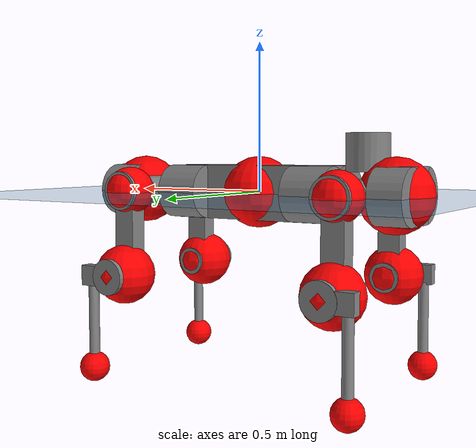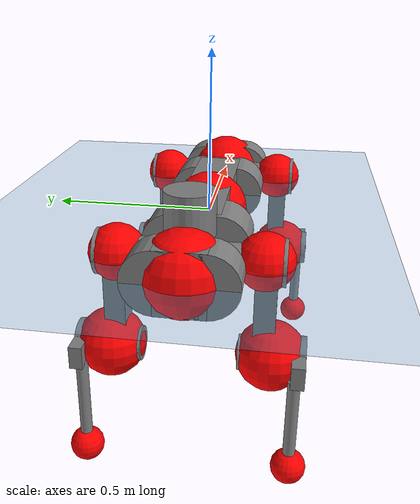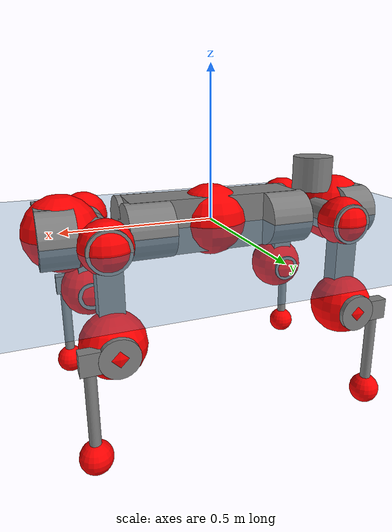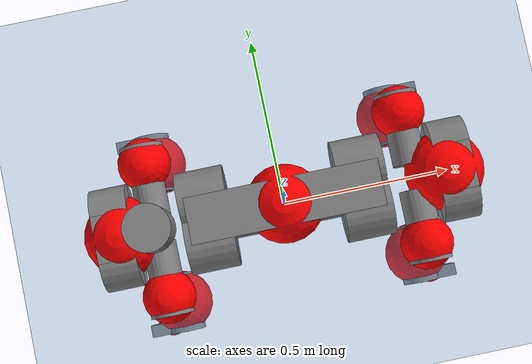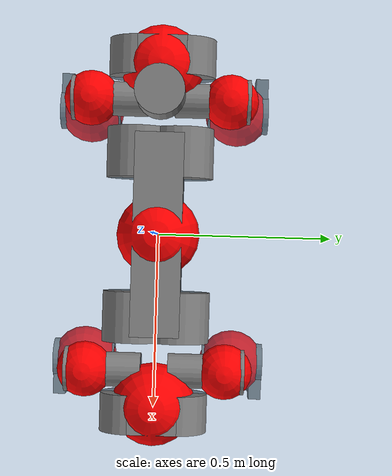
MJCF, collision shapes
<mujoco model="anymal_c">
  <compiler angle="radian" assetdir="assets" balanceinertia="true" inertiafromgeom="false"/>

  <option timestep="0.005" density="1.2" viscosity="2e-05"/>

  <size nkey="1"/>

  <visual>
    <quality shadowsize="8192"/>
    <map shadowclip="0.5"/>
  </visual>

  <default>
    <default class="/">
      <material specular="0" shininess="0.25"/>
      <geom contype="0" conaffinity="0" group="1" solref="-1000 -80"/>
      <site size="0.01 0.005 0.005" group="5"/>
      <general forcelimited="true" forcerange="-80 80" biastype="affine" gainprm="80" biasprm="0 -80 -2"/>
      <default class="anymal_c">
        <joint armature="0.01" damping="0.01" frictionloss="0.1"/>
        <default class="visual">
          <geom type="mesh" group="2"/>
          <default class="visual_zflip"/>
        </default>
        <default class="collision">
          <geom type="cylinder" group="3"/>
          <default class="foot">
            <geom size="0.03 0 0" type="sphere" condim="6" priority="1" friction="0.8 0.02 0.01" solimp="0.015 1 0.03"/>
          </default>
        </default>
      </default>
      <default class="reward_collision_sphere">
        <geom group="5" rgba="1 0 0 1"/>
      </default>
    </default>
  </default>

  <asset>
    <texture type="skybox" colorspace="auto" name="//unnamed_texture_0" builtin="gradient" rgb1="0.95 0.95 0.95" rgb2="0.95 0.95 0.95" width="100" height="600"/>
    <texture type="2d" colorspace="auto" name="texplane" builtin="checker" rgb1="0.345 0.575 0.748" rgb2="0.345 0.575 0.748" markrgb="1 1 1" width="512" height="512"/>
    <texture type="2d" colorspace="linear" name="base" file="base.png"/>
    <texture type="2d" colorspace="linear" name="top_shell" file="top_shell.png"/>
    <texture type="2d" colorspace="linear" name="bottom_shell" file="bottom_shell.png"/>
    <texture type="2d" colorspace="linear" name="remote" file="remote.png"/>
    <texture type="2d" colorspace="linear" name="hatch" file="hatch.png"/>
    <texture type="2d" colorspace="linear" name="handle" file="handle.png"/>
    <texture type="2d" colorspace="linear" name="face" file="face.png"/>
    <texture type="2d" colorspace="linear" name="battery" file="battery.png"/>
    <texture type="2d" colorspace="linear" name="lidar_cage" file="lidar_cage.png"/>
    <texture type="2d" colorspace="linear" name="depth_camera" file="depth_camera.png"/>
    <texture type="2d" colorspace="linear" name="wide_angle_camera" file="wide_angle_camera.png"/>
    <texture type="2d" colorspace="linear" name="lidar" file="lidar.png"/>
    <texture type="2d" colorspace="linear" name="drive" file="drive.png"/>
    <texture type="2d" colorspace="linear" name="hip_l" file="hip_l.png"/>
    <texture type="2d" colorspace="linear" name="shank_l" file="shank_l.png"/>
    <texture type="2d" colorspace="linear" name="foot" file="foot.png"/>
    <texture type="2d" colorspace="linear" name="thigh" file="thigh.png"/>
    <texture type="2d" colorspace="linear" name="shank_r" file="shank_r.png"/>
    <texture type="2d" colorspace="linear" name="hip_r" file="hip_r.png"/>
    <material name="MatPlane" class="/" texture="texplane" texuniform="true" texrepeat="2 2" specular="0.9" shininess="0.5"/>
    <material name="black_plastic" class="/" rgba="0.007 0.007 0.007 1"/>
    <material name="green" class="/" rgba="0.052 0.178 0.033 1"/>
    <material name="red" class="/" rgba="0.178 0.006 0.005 1"/>
    <material name="yellow" class="/" rgba="0.178 0.119 0.006 1"/>
    <material name="lwl" class="/" rgba="0.8 0.8 0.8 1"/>
    <material name="base" class="/" texture="base"/>
    <material name="top_shell" class="/" texture="top_shell"/>
    <material name="bottom_shell" class="/" texture="bottom_shell"/>
    <material name="hip_l" class="/" texture="hip_l"/>
    <material name="thigh" class="/" texture="thigh"/>
    <material name="shank_l" class="/" texture="shank_l"/>
    <material name="foot" class="/" texture="foot"/>
    <material name="hip_r" class="/" texture="hip_r"/>
    <material name="shank" class="/" texture="shank_r"/>
    <material name="hatch" class="/" texture="hatch"/>
    <material name="remote" class="/" texture="remote"/>
    <material name="handle" class="/" texture="handle"/>
    <material name="face" class="/" texture="face"/>
    <material name="depth_camera" class="/" texture="depth_camera"/>
    <material name="wide_angle_camera" class="/" texture="wide_angle_camera"/>
    <material name="battery" class="/" texture="battery"/>
    <material name="lidar_cage" class="/" texture="lidar_cage"/>
    <material name="lidar" class="/" texture="lidar"/>
    <material name="drive" class="/" texture="drive"/>
    <mesh name="base_0" class="/" file="base_0.obj"/>
    <mesh name="base_1" class="/" file="base_1.obj"/>
    <mesh name="base_2" class="/" file="base_2.obj"/>
    <mesh name="base_3" class="/" file="base_3.obj"/>
    <mesh name="base_4" class="/" file="base_4.obj"/>
    <mesh name="base_5" class="/" file="base_5.obj"/>
    <mesh name="top_shell" class="/" file="top_shell.obj"/>
    <mesh name="bottom_shell" class="/" file="bottom_shell.obj"/>
    <mesh name="remote" class="/" file="remote.obj"/>
    <mesh name="handle" class="/" file="handle.obj"/>
    <mesh name="face" class="/" file="face.obj"/>
    <mesh name="wide_angle_camera" class="/" file="wide_angle_camera.obj"/>
    <mesh name="depth_camera" class="/" file="depth_camera.obj"/>
    <mesh name="battery" class="/" file="battery.obj"/>
    <mesh name="lidar_cage" class="/" file="lidar_cage.obj"/>
    <mesh name="lidar" class="/" file="lidar.obj"/>
    <mesh name="drive" class="/" file="drive.obj"/>
    <mesh name="hip_l" class="/" file="hip_l.obj"/>
    <mesh name="thigh" class="/" file="thigh.obj"/>
    <mesh name="shank_l" class="/" file="shank_l.obj"/>
    <mesh name="foot" class="/" file="foot.obj"/>
    <mesh name="hip_r" class="/" file="hip_r.obj"/>
    <mesh name="hatch" class="/" file="hatch.obj"/>
    <mesh name="shank_r" class="/" file="shank_r.obj"/>
  </asset>

  <worldbody>
    <geom name="floor" class="/" size="100 100 0.125" type="plane" group="0" material="MatPlane"/>
    <light name="toplight_shadow" class="/" pos="0 0 5" dir="0.0990148 0.0990148 -0.990148" type="directional" ambient="0.04 0.04 0.04" diffuse="0.55 0.55 0.55" specular="0.12 0.12 0.12"/>
    <light name="toplight_fill" class="/" pos="0 0 5" dir="0.0990148 0.0990148 -0.990148" type="directional" castshadow="false" ambient="0.04 0.04 0.04" diffuse="0.3 0.3 0.3" specular="0.08 0.08 0.08"/>
    <body name="trunk" childclass="anymal_c" pos="0.00195206 -0.000208767 0.000923907" quat="1 -0.000658614 0.000159296 0.000327668">
      <inertial pos="0.000729913 -0.000916494 0.0495111" quat="0.500099 0.499617 0.499302 0.50098" mass="18.801" diaginertia="0.984064 0.417595 0.211497"/>
      <joint name="//unnamed_joint_0" type="free" armature="0" damping="0" frictionloss="0"/>
      <geom name="//unnamed_geom_1" class="visual" material="green" mesh="base_0"/>
      <geom name="//unnamed_geom_2" class="visual" material="yellow" mesh="base_1"/>
      <geom name="//unnamed_geom_3" class="visual" material="red" mesh="base_2"/>
      <geom name="//unnamed_geom_4" class="visual" material="black_plastic" mesh="base_3"/>
      <geom name="//unnamed_geom_5" class="visual" material="lwl" mesh="base_4"/>
      <geom name="//unnamed_geom_6" class="visual" material="base" mesh="base_5"/>
      <geom name="trunk_1" class="collision" size="0.291059 0.0702555 0.0903285" type="box"/>
      <geom name="trunk_2" class="collision" size="0.0903285 0.0727647" pos="0.237136 0.0646438 0" quat="0.707107 0 0.707107 0"/>
      <geom name="trunk_3" class="collision" size="0.0903285 0.0727647" pos="-0.237136 0.0646438 0" quat="0.707107 0 0.707107 0"/>
      <geom name="trunk_4" class="collision" size="0.0903285 0.0727647" pos="0.237136 -0.0646438 0" quat="0.707107 0 0.707107 0"/>
      <geom name="trunk_5" class="collision" size="0.0903285 0.0727647" pos="-0.237136 -0.0646438 0" quat="0.707107 0 0.707107 0"/>
      <geom name="//unnamed_geom_12" class="visual" material="top_shell" mesh="top_shell"/>
      <geom name="//unnamed_geom_13" class="visual" material="bottom_shell" mesh="bottom_shell"/>
      <geom name="//unnamed_geom_14" class="visual" material="remote" mesh="remote"/>
      <geom name="//unnamed_geom_15" class="visual" material="handle" mesh="handle"/>
      <geom name="//unnamed_geom_16" class="visual" pos="0.451921 0 0" quat="1 0 0 0" material="face" mesh="face"/>
      <geom name="trunk_6" class="collision" size="0.0552008 0.0702555 0.0903285" pos="0.511887 0 0" type="box"/>
      <geom name="//unnamed_geom_18" class="collision" size="0.0903285 0.0552008" pos="0.511887 0.0646438 0" quat="0.707107 0 0.707107 0"/>
      <geom name="//unnamed_geom_19" class="collision" size="0.0903285 0.0552008" pos="0.511887 -0.0646438 0" quat="0.707107 0 0.707107 0"/>
      <geom name="//unnamed_geom_20" class="visual" pos="0.503324 0 -0.0284104" quat="0.965926 0 0.258819 0" material="depth_camera" mesh="depth_camera"/>
      <geom name="//unnamed_geom_21" class="visual" pos="0.559314 0 0.0149279" material="wide_angle_camera" mesh="wide_angle_camera"/>
      <geom name="//unnamed_geom_22" class="visual_zflip" pos="-0.451921 0 0" quat="0 0 0 1" material="face" mesh="face"/>
      <geom name="trunk_7" class="collision" size="0.0552008 0.0702555 0.0903285" pos="-0.511887 0 0" quat="0 0 0 1" type="box"/>
      <geom name="//unnamed_geom_24" class="collision" size="0.0903285 0.0552008" pos="-0.511887 -0.0646438 0" quat="0 -0.707107 0 0.707107"/>
      <geom name="//unnamed_geom_25" class="collision" size="0.0903285 0.0552008" pos="-0.511887 0.0646438 0" quat="0 -0.707107 0 0.707107"/>
      <geom name="//unnamed_geom_26" class="visual" pos="-0.503324 0 -0.0284104" quat="0 -0.258819 0 0.965926" material="depth_camera" mesh="depth_camera"/>
      <geom name="//unnamed_geom_27" class="visual_zflip" pos="-0.559314 0 0.0149279" quat="0 0 0 1" material="wide_angle_camera" mesh="wide_angle_camera"/>
      <geom name="//unnamed_geom_28" class="visual" material="battery" mesh="battery"/>
      <geom name="//unnamed_geom_29" class="visual" pos="0 0.0684169 0.0296758" quat="0.683013 -0.183013 0.183013 0.683013" material="depth_camera" mesh="depth_camera"/>
      <geom name="//unnamed_geom_30" class="visual" pos="0 -0.0684169 0.0296758" quat="0.683013 0.183013 0.183013 -0.683013" material="depth_camera" mesh="depth_camera"/>
      <geom name="//unnamed_geom_31" class="visual" pos="-0.396862 0 0.0732933" quat="1 0 0 0" material="lidar_cage" mesh="lidar_cage"/>
      <geom name="trunk_8" class="collision" size="0.0702555 0.060219" pos="-0.396862 0 0.133125"/>
      <geom name="//unnamed_geom_33" class="visual" pos="-0.396862 -6.55302e-05 0.1418" quat="0.707107 0 0 -0.707107" material="lidar" mesh="lidar"/>
      <geom name="//unnamed_geom_34" class="visual" pos="0.326975 0.0960685 -1.2714e-09" quat="0.258819 0.965926 0 0" material="drive" mesh="drive"/>
      <geom name="//unnamed_geom_35" class="visual" pos="0.326975 -0.0960685 1.2714e-09" quat="0.258819 -0.965926 0 0" material="drive" mesh="drive"/>
      <geom name="//unnamed_geom_36" class="visual" pos="-0.326975 0.0960685 1.2714e-09" quat="0 0 0.965926 -0.258819" material="drive" mesh="drive"/>
      <geom name="//unnamed_geom_37" class="visual" pos="-0.326975 -0.0960685 -1.2714e-09" quat="0 0 -0.965926 -0.258819" material="drive" mesh="drive"/>
      <geom name="//unnamed_geom_38" class="visual" pos="0.126473 0 0.0727947" quat="1 0 0 0" material="hatch" mesh="hatch"/>
      <geom name="//unnamed_geom_39" class="reward_collision_sphere" size="0.120438"/>
      <geom name="//unnamed_geom_40" class="reward_collision_sphere" size="0.120438" pos="0.490626 0 0"/>
      <geom name="//unnamed_geom_41" class="reward_collision_sphere" size="0.120438" pos="-0.490626 0 0"/>
      <site name="imu" pos="0.269531 0.00418523 0.0528509" size="0.0100365"/>
      <camera name="track" pos="0 -1.84697 0" quat="0.707107 0.707107 0 0" mode="trackcom"/>
      <camera name="ego_camera" pos="0.490626 0 -0.0398875" quat="-0.5 -0.5 0.5 0.5"/>
      <body name="LF_HIP" pos="0.327308 0.0962596 -4.86316e-05" quat="0.2587 0.965958 -0.000327001 -0.000358099">
        <inertial pos="0.0616081 -0.0139904 -0.00868588" quat="-0.127242 0.710358 -0.133076 0.679332" mass="2.84139" diaginertia="0.00923882 0.00326772 0.00323865"/>
        <joint name="LF_HAA" pos="0 0 0" axis="0.999927 -0.0120824 -0.000905095" range="-0.682823 0.479157" armature="0.0099214" damping="0.00577277" frictionloss="0.100092"/>
        <geom name="//unnamed_geom_42" class="visual" pos="0 -7.47908e-05 1.22843e-05" quat="0.258819 -0.965926 0 0" material="hip_l" mesh="hip_l"/>
        <geom name="//unnamed_geom_43" class="visual" pos="0.0653078 -0.0769644 -0.0449806" quat="0.183013 -0.683013 0.683013 0.183013" material="drive" mesh="drive"/>
        <geom name="//unnamed_geom_44" class="collision" size="0.0501825 0.0702555" pos="0.0653078 -0.0110447 -0.00688558" quat="-0.353553 -0.612372 0.612372 -0.353553"/>
        <body name="LF_THIGH" pos="0.0647754 -0.0669949 -0.0429088" quat="0.182906 -0.682832 0.683114 0.183416">
          <inertial pos="0.0340204 0.000401153 -0.24641" quat="0.993204 -0.00514592 -0.0803579 0.0840384" mass="3.09009" diaginertia="0.0459479 0.0200778 0.00421879"/>
          <joint name="LF_HFE" pos="0 0 0" axis="0.999994 -0.00273028 0.00203645" range="-3.16193 3.14046" armature="0.0104339" damping="0.00799408" frictionloss="0.104869"/>
          <geom name="//unnamed_geom_45" class="visual" pos="0.00331861 5.22936e-06 0" quat="0.707107 0 0 -0.707107" material="thigh" mesh="thigh"/>
          <geom name="//unnamed_geom_46" class="collision" size="0.0652373 0.040146" pos="0.0436112 0 0" quat="0.5 0.5 -0.5 -0.5"/>
          <geom name="//unnamed_geom_47" class="collision" size="0.0376369 0.0301095 0.14183" pos="0.0327084 0 -0.140917" quat="0.707107 0 0 -0.707107" type="box"/>
          <geom name="//unnamed_geom_48" class="visual" pos="0.109355 0 -0.284198" quat="1 0 0 0" material="drive" mesh="drive"/>
          <geom name="//unnamed_geom_49" class="collision" size="0.0501825 0.0702555" pos="0.0330355 0 -0.284198" quat="0.707107 0 0.707107 0"/>
          <geom name="//unnamed_geom_50" class="reward_collision_sphere" size="0.080292" pos="0.027257 0 0"/>
          <body name="LF_SHANK" pos="0.109563 -0.00179522 -0.284075" quat="1 8.40483e-05 -4.38056e-05 5.19831e-05">
            <inertial pos="0.00518111 -0.0567366 -0.0805593" quat="0.992718 -0.118531 3.34961e-05 -0.0214669" mass="0.594878" diaginertia="0.0161603 0.00634112 0.001122"/>
            <joint name="LF_KFE" pos="0 0 0" axis="0.999984 -0.00487423 0.00272285" range="-3.16909 3.13911" armature="0.00967457" damping="0.0032727" frictionloss="0.0964246"/>
            <geom name="//unnamed_geom_51" class="visual" pos="0.00108213 0.00576996 0" quat="0.707107 0 0 -0.707107" material="shank_l" mesh="shank_l"/>
            <geom name="LF_kfe_act" class="collision" size="0.060219 0.020073" pos="0.0218056 0 0" quat="0.5 0.5 -0.5 -0.5"/>
            <geom name="//unnamed_geom_53" class="collision" size="0.0577089 0.0338732 0.0190694" pos="0.0218056 -0.0530994 0" quat="0.5 0.5 -0.5 -0.5" type="box"/>
            <geom name="//unnamed_geom_54" class="visual" pos="0.0142279 -0.0793609 -0.337019" quat="0.382683 0 0 -0.92388" material="foot" mesh="foot"/>
            <geom name="LF_calf" class="collision" size="0.0175639 0.141768" pos="0.0142282 -0.0812204 -0.16851" quat="0.707107 0 0 -0.707107"/>
            <geom name="LF_foot" class="foot" size="0.0328802" pos="0.0142282 -0.0812204 -0.314583" quat="0.707107 0 0 -0.707107"/>
            <geom name="//unnamed_geom_57" class="reward_collision_sphere" size="0.100365" pos="-0.054514 0 0"/>
            <geom name="//unnamed_geom_58" class="reward_collision_sphere" size="0.0501825" pos="0.0142282 -0.0812204 -0.314583"/>
            <site name="LF_foot" class="foot" pos="0.0142282 -0.0812204 -0.314583" quat="0.707107 0 0 -0.707107" size="0.0100365"/>
          </body>
        </body>
      </body>
      <body name="RF_HIP" pos="0.327808 -0.0965142 -0.00125352" quat="0.258504 -0.96601 4.2574e-05 0.000159691">
        <inertial pos="0.0611251 0.0134712 -0.00838702" quat="0.137265 0.676125 0.127968 0.712487" mass="2.79878" diaginertia="0.00905793 0.00333048 0.00327993"/>
        <joint name="RF_HAA" pos="0 0 0" axis="0.999985 0.000563585 0.00542909" range="-0.50964 0.722624" armature="0.00973273" damping="0.0119635" frictionloss="0.0955654"/>
        <geom name="//unnamed_geom_59" class="visual" pos="0 7.47902e-05 1.22843e-05" quat="0.258819 0.965926 0 0" material="hip_r" mesh="hip_r"/>
        <geom name="//unnamed_geom_60" class="visual" pos="0.0653078 0.0769644 -0.0449806" quat="0.183013 0.683013 0.683013 -0.183013" material="drive" mesh="drive"/>
        <geom name="//unnamed_geom_61" class="collision" size="0.0501825 0.0702555" pos="0.0653078 0.0110447 -0.00688558" quat="-0.353553 0.612372 0.612372 0.353553"/>
        <body name="RF_THIGH" pos="0.0656832 0.064907 -0.0429389" quat="0.183028 0.683049 0.682979 -0.182989">
          <inertial pos="0.0330279 -0.000507326 -0.245228" quat="0.992847 -0.00437091 -0.0798894 0.0886167" mass="3.12404" diaginertia="0.0468758 0.0205058 0.004216"/>
          <joint name="RF_HFE" pos="0 0 0" axis="1 9.63111e-06 3.08098e-05" range="-3.15215 3.15369" armature="0.00996862" damping="0.0103077" frictionloss="0.0954915"/>
          <geom name="//unnamed_geom_62" class="visual" pos="0.00331861 5.22936e-06 0" quat="0.707107 0 0 -0.707107" material="thigh" mesh="thigh"/>
          <geom name="//unnamed_geom_63" class="collision" size="0.0652373 0.040146" pos="0.0436112 0 0" quat="0.5 0.5 0.5 0.5"/>
          <geom name="//unnamed_geom_64" class="collision" size="0.0376369 0.0301095 0.14183" pos="0.0327084 0 -0.140917" quat="0.707107 0 0 0.707107" type="box"/>
          <geom name="//unnamed_geom_65" class="visual" pos="0.109355 0 -0.284198" quat="1 0 0 0" material="drive" mesh="drive"/>
          <geom name="//unnamed_geom_66" class="collision" size="0.0501825 0.0702555" pos="0.0330355 0 -0.284198" quat="0.707107 0 0.707107 0"/>
          <geom name="//unnamed_geom_67" class="reward_collision_sphere" size="0.080292" pos="0.027257 0 0"/>
          <body name="RF_SHANK" pos="0.109134 -0.000402468 -0.283184" quat="1 2.05875e-05 3.9786e-05 3.16707e-05">
            <inertial pos="0.00593973 0.0567006 -0.0804478" quat="0.993113 0.115246 -0.00494673 0.0204889" mass="0.596739" diaginertia="0.015687 0.00621668 0.00110245"/>
            <joint name="RF_KFE" pos="0 0 0" axis="0.999991 0.00352987 -0.00255633" range="-3.12441 3.13749" armature="0.0104588" damping="0.0103381" frictionloss="0.105308"/>
            <geom name="//unnamed_geom_68" class="visual" pos="0.00108212 -0.00576995 0" quat="0.707107 0 0 0.707107" material="shank" mesh="shank_r"/>
            <geom name="RF_kfe_act" class="collision" size="0.060219 0.020073" pos="0.0218056 0 0" quat="0.5 0.5 0.5 0.5"/>
            <geom name="//unnamed_geom_70" class="collision" size="0.0577089 0.0338732 0.0190694" pos="0.0218056 0.0530994 0" quat="0.5 0.5 0.5 0.5" type="box"/>
            <geom name="//unnamed_geom_71" class="visual" pos="0.0142284 0.0793609 -0.337019" quat="0.382683 0 0 0.92388" material="foot" mesh="foot"/>
            <geom name="RF_calf" class="collision" size="0.0175639 0.141768" pos="0.0142282 0.0812204 -0.16851" quat="0.707107 0 0 0.707107"/>
            <geom name="RF_foot" class="foot" size="0.0293635" pos="0.0142282 0.0812204 -0.314583" quat="0.707107 0 0 0.707107"/>
            <geom name="//unnamed_geom_74" class="reward_collision_sphere" size="0.100365" pos="-0.054514 0 0"/>
            <geom name="//unnamed_geom_75" class="reward_collision_sphere" size="0.0501825" pos="0.0142282 0.0812204 -0.314583"/>
            <site name="RF_foot" class="foot" pos="0.0142282 0.0812204 -0.314583" quat="0.707107 0 0 0.707107" size="0.0100365"/>
          </body>
        </body>
      </body>
      <body name="LH_HIP" pos="-0.326641 0.0965776 0.000631207" quat="0.000200434 0.000280918 0.965922 -0.258833">
        <inertial pos="0.0609475 0.0155275 -0.00863128" quat="0.130056 0.682909 0.134802 0.70608" mass="2.86663" diaginertia="0.00907048 0.00331771 0.00329986"/>
        <joint name="LH_HAA" pos="0 0 0" axis="0.999998 -0.00022905 0.00185928" range="-0.50323 0.733392" armature="0.00966745" damping="0.0134849" frictionloss="0.106715"/>
        <geom name="//unnamed_geom_76" class="visual" pos="0 7.47902e-05 1.22843e-05" quat="-0.258819 -0.965926 0 0" material="hip_r" mesh="hip_r"/>
        <geom name="//unnamed_geom_77" class="visual" pos="0.0653078 0.0769644 -0.0449806" quat="0.183013 0.683013 0.683013 -0.183013" material="drive" mesh="drive"/>
        <geom name="//unnamed_geom_78" class="collision" size="0.0501825 0.0702555" pos="0.0653078 0.0110447 -0.00688558" quat="-0.353553 0.612372 0.612372 0.353553"/>
        <body name="LH_THIGH" pos="0.0647685 0.0658076 -0.0414785" quat="0.182774 0.683205 0.682882 -0.183021">
          <inertial pos="0.0337838 8.46201e-05 -0.24451" quat="0.992334 -0.00808259 -0.0827413 0.0914444" mass="3.15016" diaginertia="0.0462148 0.0200388 0.00408958"/>
          <joint name="LH_HFE" pos="0 0 0" axis="0.999994 -0.00264689 0.00236333" range="-3.14235 3.14523" armature="0.0101921" damping="0.0119506" frictionloss="0.0999728"/>
          <geom name="//unnamed_geom_79" class="visual" pos="0.00331861 5.22936e-06 0" quat="0.707107 0 0 -0.707107" material="thigh" mesh="thigh"/>
          <geom name="//unnamed_geom_80" class="collision" size="0.0652373 0.040146" pos="0.0436112 0 0" quat="0.5 0.5 -0.5 -0.5"/>
          <geom name="//unnamed_geom_81" class="collision" size="0.0376369 0.0301095 0.14183" pos="0.0327084 0 -0.140917" quat="0.707107 0 0 -0.707107" type="box"/>
          <geom name="//unnamed_geom_82" class="visual" pos="0.109355 0 -0.284198" quat="1 0 0 0" material="drive" mesh="drive"/>
          <geom name="//unnamed_geom_83" class="collision" size="0.0501825 0.0702555" pos="0.0330355 0 -0.284198" quat="0.707107 0 0.707107 0"/>
          <geom name="//unnamed_geom_84" class="reward_collision_sphere" size="0.080292" pos="0.027257 0 0"/>
          <body name="LH_SHANK" pos="0.109634 -0.00037965 -0.285549" quat="1 1.26557e-05 -2.48765e-05 2.29018e-05">
            <inertial pos="0.00687762 0.0582844 -0.0801785" quat="0.99276 0.116779 0.0016187 0.028063" mass="0.589036" diaginertia="0.0156286 0.00614096 0.00106633"/>
            <joint name="LH_KFE" pos="0 0 0" axis="0.999998 0.00208934 -9.21972e-05" range="-3.14088 3.12163" armature="0.00973611" damping="0.00933282" frictionloss="0.109144"/>
            <geom name="//unnamed_geom_85" class="visual" pos="0.00108212 -0.00576995 0" quat="-0.707107 0 0 -0.707107" material="shank" mesh="shank_r"/>
            <geom name="LH_kfe_act" class="collision" size="0.060219 0.020073" pos="0.0218056 0 0" quat="0.5 0.5 -0.5 -0.5"/>
            <geom name="//unnamed_geom_87" class="collision" size="0.0577089 0.0338732 0.0190694" pos="0.0218056 0.0530994 0" quat="0.5 0.5 -0.5 -0.5" type="box"/>
            <geom name="//unnamed_geom_88" class="visual" pos="0.0142284 0.0793609 -0.337019" quat="-0.382683 0 0 -0.92388" material="foot" mesh="foot"/>
            <geom name="LH_calf" class="collision" size="0.0175639 0.141768" pos="0.0142282 0.0812204 -0.16851" quat="0.707107 0 0 -0.707107"/>
            <geom name="LH_foot" class="foot" size="0.0314263" pos="0.0142282 0.0812204 -0.314583" quat="0.707107 0 0 -0.707107"/>
            <geom name="//unnamed_geom_91" class="reward_collision_sphere" size="0.100365" pos="-0.054514 0 0"/>
            <geom name="//unnamed_geom_92" class="reward_collision_sphere" size="0.0501825" pos="0.0142282 0.0812204 -0.314583"/>
            <site name="LH_foot" class="foot" pos="0.0142282 0.0812204 -0.314583" quat="0.707107 0 0 -0.707107" size="0.0100365"/>
          </body>
        </body>
      </body>
      <body name="RH_HIP" pos="-0.32765 -0.0957131 -0.000235001" quat="-0.00068041 -3.69355e-05 -0.965767 -0.259409">
        <inertial pos="0.0635586 -0.0139694 -0.0102697" quat="-0.12793 0.709743 -0.135432 0.67938" mass="2.81368" diaginertia="0.00904914 0.00331385 0.00322728"/>
        <joint name="RH_HAA" pos="0 0 0" axis="0.999942 -0.00115497 -0.0107086" range="-0.7407 0.499768" armature="0.0104914" damping="0.00840234" frictionloss="0.101402"/>
        <geom name="//unnamed_geom_93" class="visual" pos="0 -7.47908e-05 1.22843e-05" quat="-0.258819 0.965926 0 0" material="hip_l" mesh="hip_l"/>
        <geom name="//unnamed_geom_94" class="visual" pos="0.0653078 -0.0769644 -0.0449806" quat="-0.183013 0.683013 -0.683013 -0.183013" material="drive" mesh="drive"/>
        <geom name="//unnamed_geom_95" class="collision" size="0.0501825 0.0702555" pos="0.0653078 -0.0110447 -0.00688558" quat="0.353553 0.612372 -0.612372 0.353553"/>
        <body name="RH_THIGH" pos="0.0654529 -0.0666683 -0.0437264" quat="-0.182897 0.683023 -0.683055 -0.182932">
          <inertial pos="0.0332494 0.000212651 -0.244731" quat="0.993151 -0.00498839 -0.0808337 0.0842105" mass="3.06717" diaginertia="0.0464215 0.0200381 0.00413583"/>
          <joint name="RH_HFE" pos="0 0 0" axis="1 -0.000557589 2.08573e-06" range="-3.13987 3.16641" armature="0.00979105" damping="0.00721463" frictionloss="0.101256"/>
          <geom name="//unnamed_geom_96" class="visual" pos="0.00331861 5.22936e-06 0" quat="0.707107 0 0 -0.707107" material="thigh" mesh="thigh"/>
          <geom name="//unnamed_geom_97" class="collision" size="0.0652373 0.040146" pos="0.0436112 0 0" quat="0.5 0.5 0.5 0.5"/>
          <geom name="//unnamed_geom_98" class="collision" size="0.0376369 0.0301095 0.14183" pos="0.0327084 0 -0.140917" quat="0.707107 0 0 0.707107" type="box"/>
          <geom name="//unnamed_geom_99" class="visual" pos="0.109355 0 -0.284198" quat="1 0 0 0" material="drive" mesh="drive"/>
          <geom name="//unnamed_geom_100" class="collision" size="0.0501825 0.0702555" pos="0.0330355 0 -0.284198" quat="0.707107 0 0.707107 0"/>
          <geom name="//unnamed_geom_101" class="reward_collision_sphere" size="0.080292" pos="0.027257 0 0"/>
          <body name="RH_SHANK" pos="0.108729 0.000584051 -0.285181" quat="1 -0.000165115 -5.4253e-05 3.78464e-05">
            <inertial pos="0.00584843 -0.0559453 -0.0801398" quat="0.993198 -0.114218 -0.0021765 -0.0225043" mass="0.593427" diaginertia="0.0154775 0.00618235 0.00111461"/>
            <joint name="RH_KFE" pos="0 0 0" axis="0.999945 0.00225155 0.010275" range="-3.12219 3.13574" armature="0.0102954" damping="0.0139751" frictionloss="0.102783"/>
            <geom name="//unnamed_geom_102" class="visual" pos="0.00108213 0.00576996 0" quat="0.707107 0 0 -0.707107" material="shank_l" mesh="shank_l"/>
            <geom name="RH_kfe_act" class="collision" size="0.060219 0.020073" pos="0.0218056 0 0" quat="0.5 0.5 0.5 0.5"/>
            <geom name="//unnamed_geom_104" class="collision" size="0.0577089 0.0338732 0.0190694" pos="0.0218056 -0.0530994 0" quat="0.5 0.5 0.5 0.5" type="box"/>
            <geom name="//unnamed_geom_105" class="visual" pos="0.0142279 -0.0793609 -0.337019" quat="0.382683 0 0 -0.92388" material="foot" mesh="foot"/>
            <geom name="RH_calf" class="collision" size="0.0175639 0.141768" pos="0.0142282 -0.0812204 -0.16851" quat="0.707107 0 0 0.707107"/>
            <geom name="RH_foot" class="foot" size="0.0273127" pos="0.0142282 -0.0812204 -0.314583" quat="0.707107 0 0 0.707107"/>
            <geom name="//unnamed_geom_108" class="reward_collision_sphere" size="0.100365" pos="-0.054514 0 0"/>
            <geom name="//unnamed_geom_109" class="reward_collision_sphere" size="0.0501825" pos="0.0142282 -0.0812204 -0.314583"/>
            <site name="RH_foot" class="foot" pos="0.0142282 -0.0812204 -0.314583" quat="0.707107 0 0 0.707107" size="0.0100365"/>
          </body>
        </body>
      </body>
    </body>
  </worldbody>

  <contact>
    <pair class="/" geom1="floor" geom2="LF_foot" name="//unnamed_contact_0"/>
    <pair class="/" geom1="floor" geom2="RF_foot" name="//unnamed_contact_1"/>
    <pair class="/" geom1="floor" geom2="LH_foot" name="//unnamed_contact_2"/>
    <pair class="/" geom1="floor" geom2="RH_foot" name="//unnamed_contact_3"/>
  </contact>

  <actuator>
    <general name="LF_HAA" class="/" joint="LF_HAA" forcerange="-81.1729 81.1729" gainprm="79.1317" biasprm="0 -79.1317 -1.93155"/>
    <general name="LF_HFE" class="/" joint="LF_HFE" forcerange="-82.7377 82.7377" gainprm="79.1317" biasprm="0 -79.1317 -1.93155"/>
    <general name="LF_KFE" class="/" joint="LF_KFE" forcerange="-79.55 79.55" gainprm="79.1317" biasprm="0 -79.1317 -1.93155"/>
    <general name="RF_HAA" class="/" joint="RF_HAA" forcerange="-81.5628 81.5628" gainprm="79.1317" biasprm="0 -79.1317 -1.93155"/>
    <general name="RF_HFE" class="/" joint="RF_HFE" forcerange="-79.742 79.742" gainprm="79.1317" biasprm="0 -79.1317 -1.93155"/>
    <general name="RF_KFE" class="/" joint="RF_KFE" forcerange="-80.0243 80.0243" gainprm="79.1317" biasprm="0 -79.1317 -1.93155"/>
    <general name="LH_HAA" class="/" joint="LH_HAA" forcerange="-86.1274 86.1274" gainprm="79.1317" biasprm="0 -79.1317 -1.93155"/>
    <general name="LH_HFE" class="/" joint="LH_HFE" forcerange="-83.4746 83.4746" gainprm="79.1317" biasprm="0 -79.1317 -1.93155"/>
    <general name="LH_KFE" class="/" joint="LH_KFE" forcerange="-76.7305 76.7305" gainprm="79.1317" biasprm="0 -79.1317 -1.93155"/>
    <general name="RH_HAA" class="/" joint="RH_HAA" forcerange="-81.5978 81.5978" gainprm="79.1317" biasprm="0 -79.1317 -1.93155"/>
    <general name="RH_HFE" class="/" joint="RH_HFE" forcerange="-85.5207 85.5207" gainprm="79.1317" biasprm="0 -79.1317 -1.93155"/>
    <general name="RH_KFE" class="/" joint="RH_KFE" forcerange="-81.8857 81.8857" gainprm="79.1317" biasprm="0 -79.1317 -1.93155"/>
  </actuator>

  <sensor>
    <gyro site="imu" name="imu_angular_velocity"/>
    <velocimeter site="imu" name="imu_linear_velocity"/>
    <framelinvel objtype="site" objname="LF_foot" name="LF_foot_global_linear_velocity"/>
    <framelinvel objtype="site" objname="RF_foot" name="RF_foot_global_linear_velocity"/>
    <framelinvel objtype="site" objname="LH_foot" name="LH_foot_global_linear_velocity"/>
    <framelinvel objtype="site" objname="RH_foot" name="RH_foot_global_linear_velocity"/>
  </sensor>

  <keyframe>
    <key name="home" qpos="0 0 0.55 1 0 0 0 0 0.4 -0.8 0 -0.4 0.8 0 -0.4 0.8 0 0.4 -0.8"/>
  </keyframe>
</mujoco>
